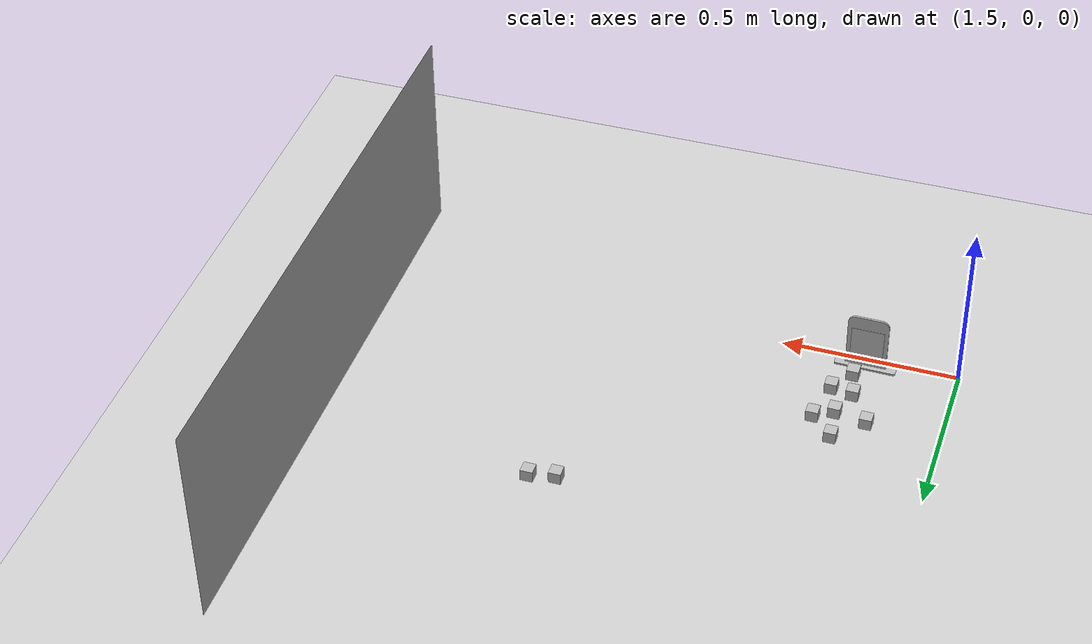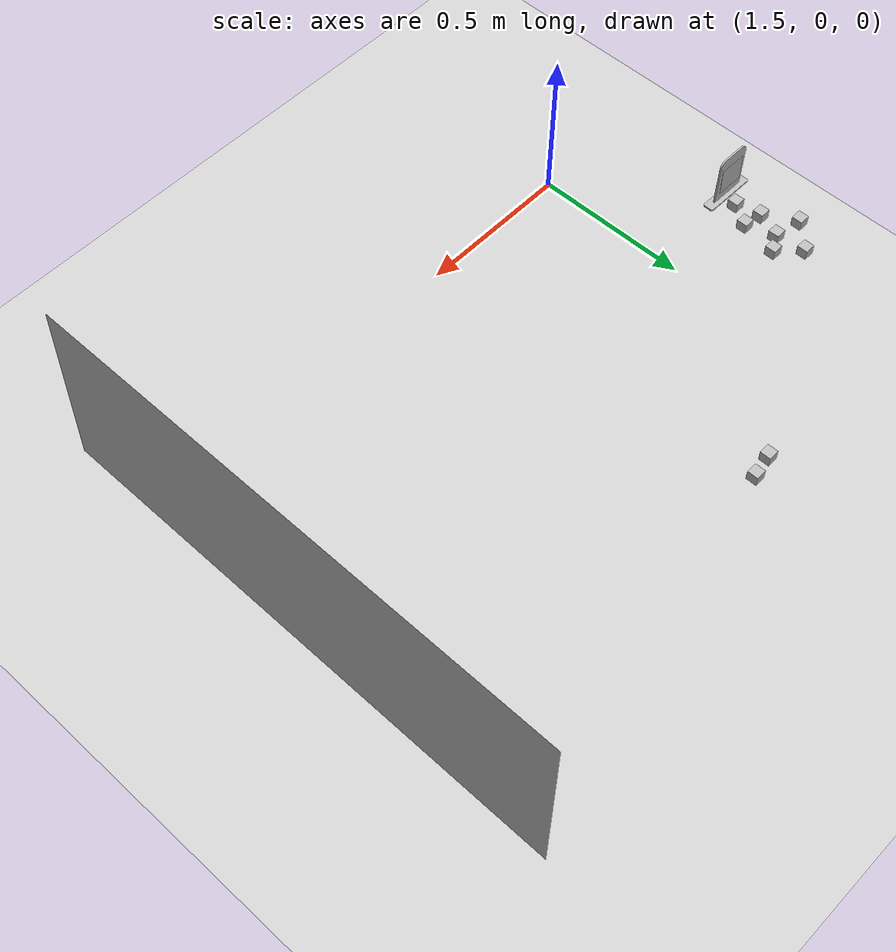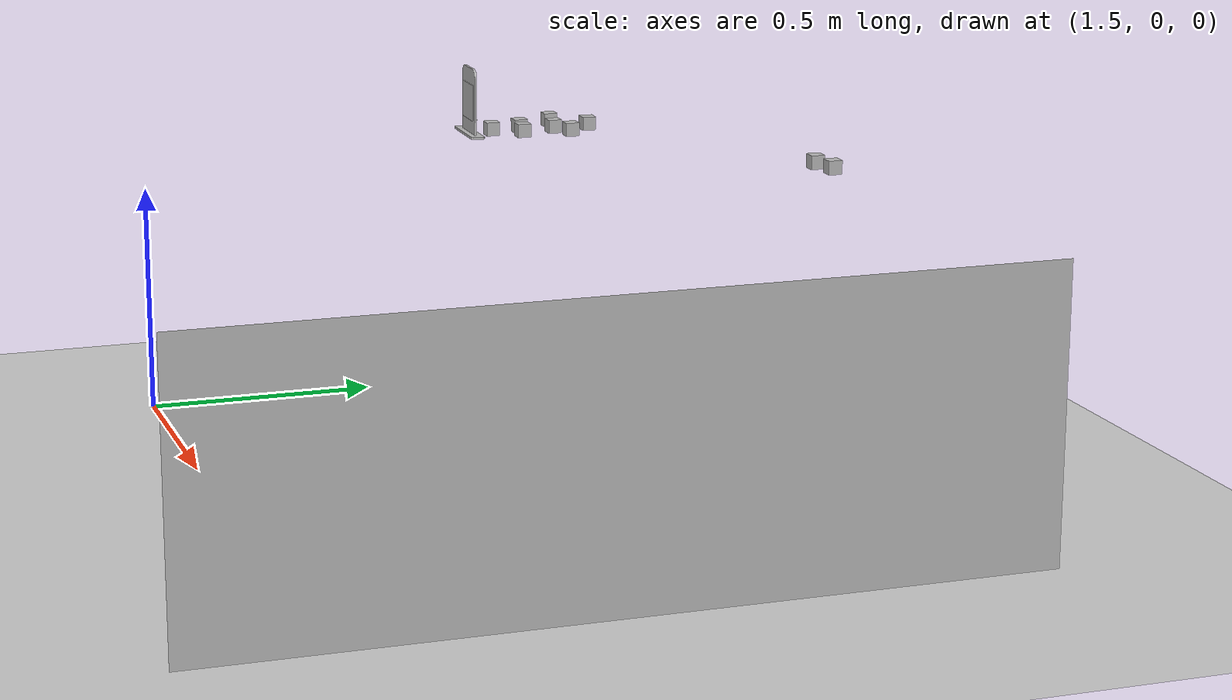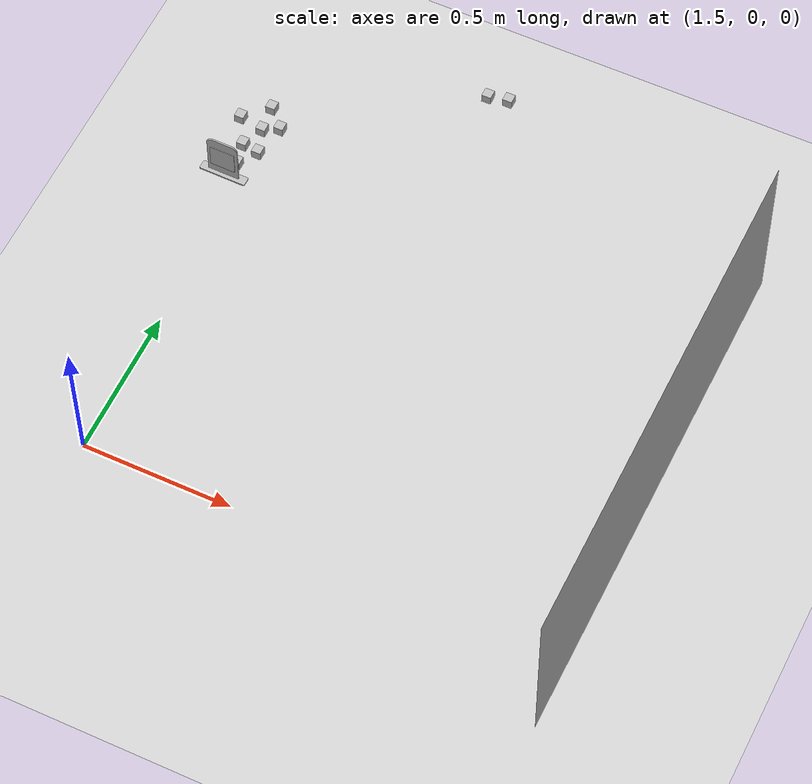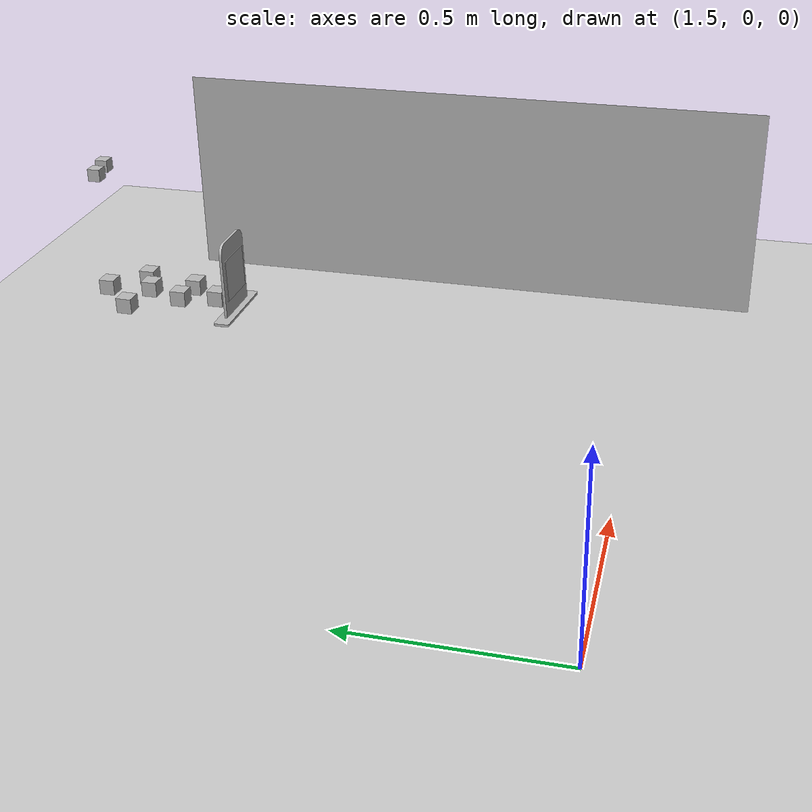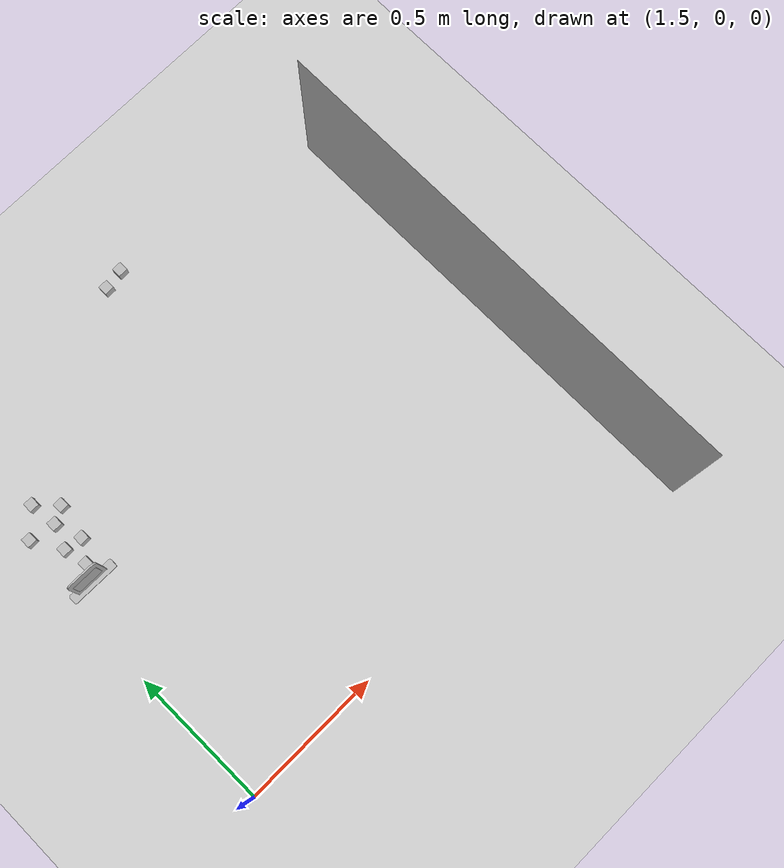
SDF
<sdf version="1.7">
 <world name="default">
  <model name="ground_plane">
   <static>1</static>
   <link name="link">
    <collision name="collision">
     <geometry><plane><normal>0 0 1</normal><size>100 100</size></plane></geometry>
     <surface><friction><ode><mu>100</mu><mu2>50</mu2></ode></friction></surface>
    </collision>
    <visual name="visual">
     <cast_shadows>0</cast_shadows>
     <geometry><plane><normal>0 0 1</normal><size>100 100</size></plane></geometry>
     <material>
      <script><uri>file://media/materials/scripts/gazebo.material</uri><name>Gazebo/Grey</name></script>
     </material>
    </visual>
   </link>
  </model>
  <model name="pancarte_qr_code_zone2NabiYaar">
   <pose>1.65183 0.703944 0.649378 0 0 -0.013896</pose>
   <model name="pancarte">
    <static>1</static>
    <link name="link">
     <collision name="collision">
      <pose>0 0.075 0 0 -0 0</pose>
      <geometry><box><size>0.15 0.15 0.03</size></box></geometry>
     </collision>
     <visual name="visual">
      <geometry>
       <mesh><scale>0.001 0.001 0.001</scale><uri>model://pancarte/meshes/PANCARTE_QR.stl</uri></mesh>
      </geometry>
     </visual>
    </link>
    <pose>8.8e-05 0.001115 -0.037644 1.55978 -0 0</pose>
   </model>
   <model name="qr_code_zone2NabiYaar">
    <static>1</static>
    <link name="qr_code_zone2NabiYaar_link">
     <pose>0 0 0.001 0 -0 1.5708</pose>
     <visual name="visual_qr_code_zone2NabiYaar">
      <cast_shadows>0</cast_shadows>
      <geometry><box><size>0.08 0.08 0.001</size></box></geometry>
      <material>
       <script>
        <uri>model://qr_code_zone2NabiYaar/materials/scripts</uri>
        <uri>model://qr_code_zone2NabiYaar/materials/textures</uri>
        <name>qr_code_zone2NabiYaar/qr_code_zone2NabiYaar</name>
       </script>
      </material>
     </visual>
    </link>
    <pose>-8.8e-05 -0.001115 0.037644 1.55615 -0 0</pose>
   </model>
   <model name="qr_code_zone2NabiYaar_0">
    <static>1</static>
    <link name="qr_code_zone2NabiYaar_link">
     <pose>0 0 0.001 0 -0 1.5708</pose>
     <visual name="visual_qr_code_zone2NabiYaar">
      <cast_shadows>0</cast_shadows>
      <geometry><box><size>0.08 0.08 0.001</size></box></geometry>
      <material>
       <script>
        <uri>model://qr_code_zone2NabiYaar/materials/scripts</uri>
        <uri>model://qr_code_zone2NabiYaar/materials/textures</uri>
        <name>qr_code_zone2NabiYaar/qr_code_zone2NabiYaar</name>
       </script>
      </material>
     </visual>
    </link>
    <pose>-8.8e-05 0.0072 0.037644 -1.58544 0.001593 3.14159</pose>
   </model>
   <static>0</static>
  </model>
  <model name="recyclables_industrielle_cuivre_fil">
   <static>0</static>
   <link name="link">
    <inertial>
     <mass>0.00893</mass>
     <inertia>
      <ixx>4.47e-06</ixx>
      <iyy>4.47e-06</iyy>
      <izz>4.47e-06</izz>
      <ixy>0</ixy>
      <ixz>0</ixz>
      <iyz>0</iyz>
     </inertia>
    </inertial>
    <visual name="cube_visual">
     <geometry><box><size>0.03 0.03 0.03</size></box></geometry>
     <material>
      <script>
       <uri>model://recyclables_industrielle_cuivre_fil/materials/scripts/</uri>
       <uri>model://recyclables_industrielle_cuivre_fil/materials/textures/</uri>
       <name>recyclables_industrielle_cuivre_fil/FaceMaterial</name>
      </script>
     </material>
    </visual>
    <collision name="collision"><geometry><box><size>0.03 0.03 0.03</size></box></geometry></collision>
   </link>
   <pose>2.30586 1.30245 0.624992 9.7e-05 -4e-06 -0.001778</pose>
  </model>
  <model name="recyclables_industrielle_ferraille_acier">
   <static>0</static>
   <link name="link">
    <inertial>
     <mass>0.00893</mass>
     <inertia>
      <ixx>4.47e-06</ixx>
      <iyy>4.47e-06</iyy>
      <izz>4.47e-06</izz>
      <ixy>0</ixy>
      <ixz>0</ixz>
      <iyz>0</iyz>
     </inertia>
    </inertial>
    <visual name="cube_visual">
     <geometry><box><size>0.03 0.03 0.03</size></box></geometry>
     <material>
      <script>
       <uri>model://recyclables_industrielle_ferraille_acier/materials/scripts/</uri>
       <uri>model://recyclables_industrielle_ferraille_acier/materials/textures/</uri>
       <name>recyclables_industrielle_ferraille_acier/FaceMaterial</name>
      </script>
     </material>
    </visual>
    <collision name="collision"><geometry><box><size>0.03 0.03 0.03</size></box></geometry></collision>
   </link>
   <pose>2.24252 1.29044 0.624992 9.7e-05 -4e-06 -0.001946</pose>
  </model>
  <model name="menagers_commerciale_emballage_croissant">
   <static>0</static>
   <link name="link">
    <inertial>
     <mass>0.00893</mass>
     <inertia>
      <ixx>4.47e-06</ixx>
      <iyy>4.47e-06</iyy>
      <izz>4.47e-06</izz>
      <ixy>0</ixy>
      <ixz>0</ixz>
      <iyz>0</iyz>
     </inertia>
    </inertial>
    <visual name="cube_visual">
     <geometry><box><size>0.03 0.03 0.03</size></box></geometry>
     <material>
      <script>
       <uri>model://menagers_commerciale_emballage_croissant/materials/scripts/</uri>
       <uri>model://menagers_commerciale_emballage_croissant/materials/textures/</uri>
       <name>menagers_commerciale_emballage_croissant/FaceMaterial</name>
      </script>
     </material>
    </visual>
    <collision name="collision"><geometry><box><size>0.03 0.03 0.03</size></box></geometry></collision>
   </link>
   <pose>1.71155 0.810987 0.625 0 0 -0.005496</pose>
  </model>
  <model name="recyclables_commerciale_papier_journal_commercial">
   <static>0</static>
   <link name="link">
    <inertial>
     <mass>0.00893</mass>
     <inertia>
      <ixx>4.47e-06</ixx>
      <iyy>4.47e-06</iyy>
      <izz>4.47e-06</izz>
      <ixy>0</ixy>
      <ixz>0</ixz>
      <iyz>0</iyz>
     </inertia>
    </inertial>
    <visual name="cube_visual">
     <geometry><box><size>0.03 0.03 0.03</size></box></geometry>
     <material>
      <script>
       <uri>model://recyclables_commerciale_papier_journal_commercial/materials/scripts/</uri>
       <uri>model://recyclables_commerciale_papier_journal_commercial/materials/textures/</uri>
       <name>recyclables_commerciale_papier_journal_commercial/FaceMaterial</name>
      </script>
     </material>
    </visual>
    <collision name="collision"><geometry><box><size>0.03 0.03 0.03</size></box></geometry></collision>
   </link>
   <pose>1.68513 0.891398 0.624995 0 -8.1e-05 -0.003239</pose>
  </model>
  <model name="recyclables_industrielle_metal_inox">
   <static>0</static>
   <link name="link">
    <inertial>
     <mass>0.00893</mass>
     <inertia>
      <ixx>4.47e-06</ixx>
      <iyy>4.47e-06</iyy>
      <izz>4.47e-06</izz>
      <ixy>0</ixy>
      <ixz>0</ixz>
      <iyz>0</iyz>
     </inertia>
    </inertial>
    <visual name="cube_visual">
     <geometry><box><size>0.03 0.03 0.03</size></box></geometry>
     <material>
      <script>
       <uri>model://recyclables_industrielle_metal_inox/materials/scripts/</uri>
       <uri>model://recyclables_industrielle_metal_inox/materials/textures/</uri>
       <name>recyclables_industrielle_metal_inox/FaceMaterial</name>
      </script>
     </material>
    </visual>
    <collision name="collision"><geometry><box><size>0.03 0.03 0.03</size></box></geometry></collision>
   </link>
   <pose>1.73199 0.917085 0.624993 -0 8e-06 -0.007163</pose>
  </model>
  <model name="recyclables_industrielle_metal_zinc">
   <static>0</static>
   <link name="link">
    <inertial>
     <mass>0.00893</mass>
     <inertia>
      <ixx>4.47e-06</ixx>
      <iyy>4.47e-06</iyy>
      <izz>4.47e-06</izz>
      <ixy>0</ixy>
      <ixz>0</ixz>
      <iyz>0</iyz>
     </inertia>
    </inertial>
    <visual name="cube_visual">
     <geometry><box><size>0.03 0.03 0.03</size></box></geometry>
     <material>
      <script>
       <uri>model://recyclables_industrielle_metal_zinc/materials/scripts/</uri>
       <uri>model://recyclables_industrielle_metal_zinc/materials/textures/</uri>
       <name>recyclables_industrielle_metal_zinc/FaceMaterial</name>
      </script>
     </material>
    </visual>
    <collision name="collision"><geometry><box><size>0.03 0.03 0.03</size></box></geometry></collision>
   </link>
   <pose>1.60633 0.906513 0.624993 -0.000125 2e-06 -0.010583</pose>
  </model>
  <model name="recyclables_residentielle_bouteille_verre_vin">
   <static>0</static>
   <link name="link">
    <inertial>
     <mass>0.00893</mass>
     <inertia>
      <ixx>4.47e-06</ixx>
      <iyy>4.47e-06</iyy>
      <izz>4.47e-06</izz>
      <ixy>0</ixy>
      <ixz>0</ixz>
      <iyz>0</iyz>
     </inertia>
    </inertial>
    <visual name="cube_visual">
     <geometry><box><size>0.03 0.03 0.03</size></box></geometry>
     <material>
      <script>
       <uri>model://recyclables_residentielle_bouteille_verre_vin/materials/scripts/</uri>
       <uri>model://recyclables_residentielle_bouteille_verre_vin/materials/textures/</uri>
       <name>recyclables_residentielle_bouteille_verre_vin/FaceMaterial</name>
      </script>
     </material>
    </visual>
    <collision name="collision"><geometry><box><size>0.03 0.03 0.03</size></box></geometry></collision>
   </link>
   <pose>1.67221 0.750506 0.625 0 0 -0.006763</pose>
  </model>
  <model name="recyclables_residentielle_canette_alu_propre">
   <static>0</static>
   <link name="link">
    <inertial>
     <mass>0.00893</mass>
     <inertia>
      <ixx>4.47e-06</ixx>
      <iyy>4.47e-06</iyy>
      <izz>4.47e-06</izz>
      <ixy>0</ixy>
      <ixz>0</ixz>
      <iyz>0</iyz>
     </inertia>
    </inertial>
    <visual name="cube_visual">
     <geometry><box><size>0.03 0.03 0.03</size></box></geometry>
     <material>
      <script>
       <uri>model://recyclables_residentielle_canette_alu_propre/materials/scripts/</uri>
       <uri>model://recyclables_residentielle_canette_alu_propre/materials/textures/</uri>
       <name>recyclables_residentielle_canette_alu_propre/FaceMaterial</name>
      </script>
     </material>
    </visual>
    <collision name="collision"><geometry><box><size>0.03 0.03 0.03</size></box></geometry></collision>
   </link>
   <pose>1.6757 0.975199 0.625 0 0 -0.006763</pose>
  </model>
  <model name="dangereux_residentielle_chargeur_telephone">
   <static>0</static>
   <link name="link">
    <inertial>
     <mass>0.00893</mass>
     <inertia>
      <ixx>4.47e-06</ixx>
      <iyy>4.47e-06</iyy>
      <izz>4.47e-06</izz>
      <ixy>0</ixy>
      <ixz>0</ixz>
      <iyz>0</iyz>
     </inertia>
    </inertial>
    <visual name="cube_visual">
     <geometry><box><size>0.03 0.03 0.03</size></box></geometry>
     <material>
      <script>
       <uri>model://dangereux_residentielle_chargeur_telephone/materials/scripts/</uri>
       <uri>model://dangereux_residentielle_chargeur_telephone/materials/textures/</uri>
       <name>dangereux_residentielle_chargeur_telephone/FaceMaterial</name>
      </script>
     </material>
    </visual>
    <collision name="collision"><geometry><box><size>0.03 0.03 0.03</size></box></geometry></collision>
   </link>
   <pose>1.65739 0.820107 0.625 0 0 -0.005838</pose>
  </model>
  <model name="logotrc_9">
   <static>1</static>
   <link name="link">
    <visual name="cube_visual">
     <geometry><box><size>1.7021 0 0.60443</size></box></geometry>
     <material>
      <script>
       <uri>model://logotrc/materials/scripts/</uri>
       <uri>model://logotrc/materials/textures/</uri>
       <name>logotrc/FaceMaterial</name>
      </script>
     </material>
    </visual>
   </link>
   <pose>3.12824 0.575178 0.302189 0 0 -1.57374</pose>
  </model>
 </world>
</sdf>
